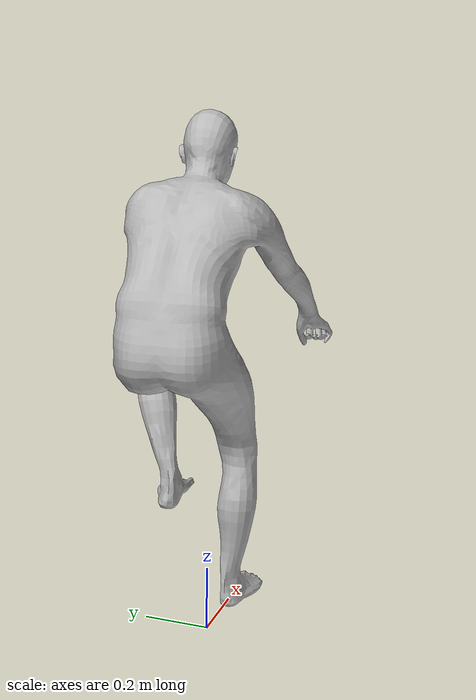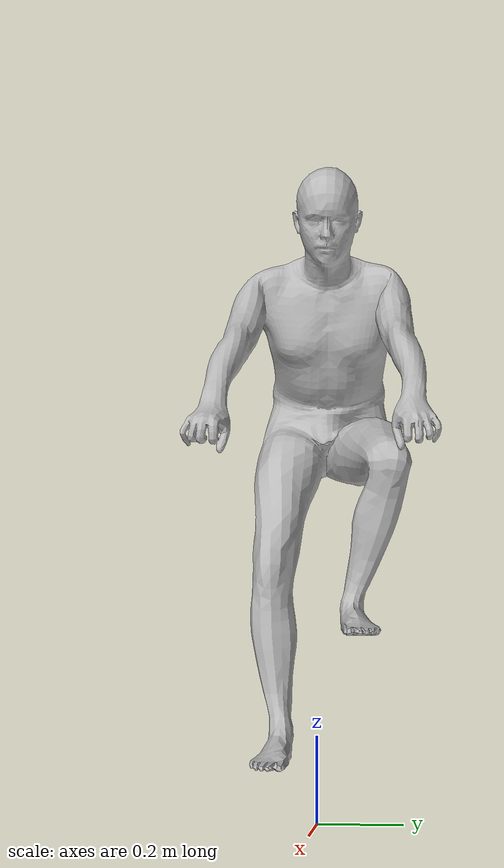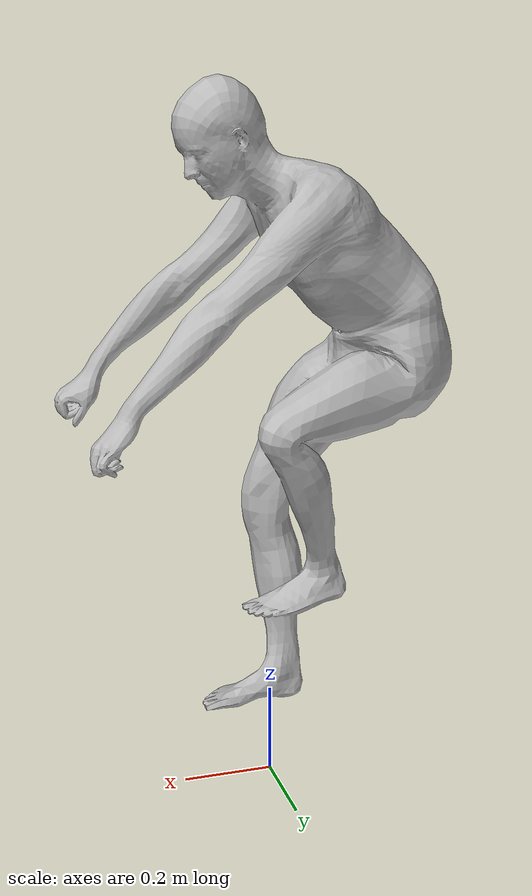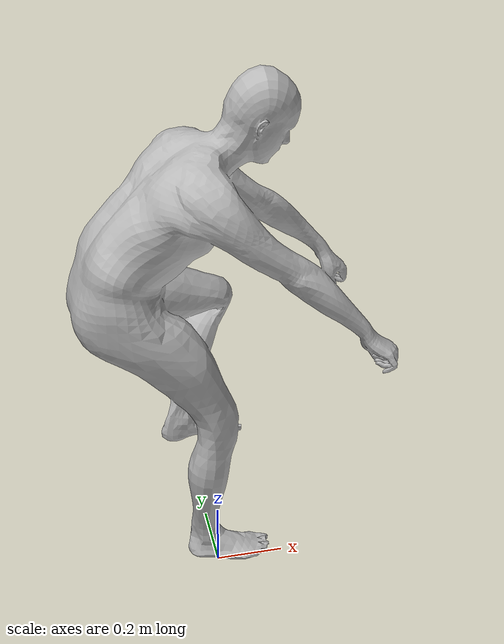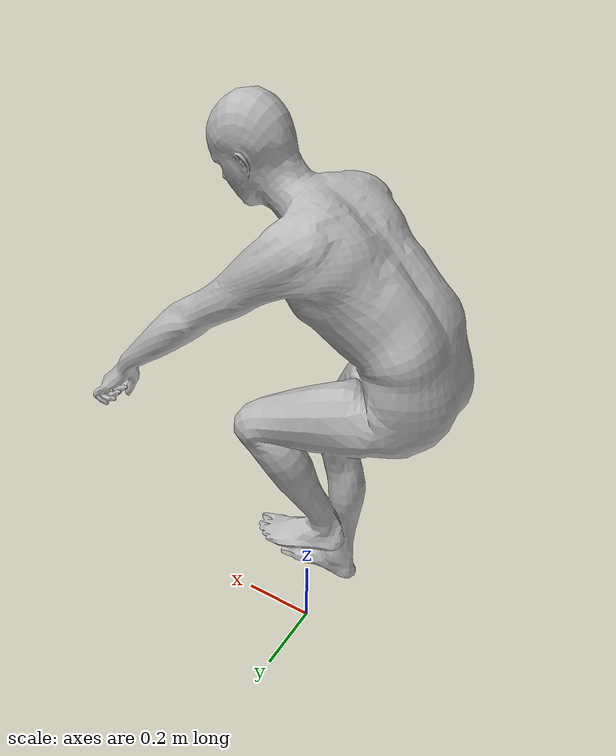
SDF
<?xml version="1.0" ?>
<sdf version="1.5">
  <model name="person_walking">
    <link name="link">
      <inertial>
        <pose>-0.102316 0.009944 1.031351 0 0 0</pose>
        <mass>50.26</mass>
        <inertia>
          <ixx>0.004666</ixx>
          <ixy>-0.000034</ixy>
          <ixz>-0.000231</ixz>
          <iyy>0.005206</iyy>
          <iyz>-0.000265</iyz>
          <izz>0.001909</izz>
        </inertia>
      </inertial>

      <collision name="person">
        <pose>0 0 0 0 0 0</pose>
        <geometry>
          <mesh>
            <uri>model://person_walking/meshes/human3.stl</uri>
          </mesh>
        </geometry>
      </collision>

      <visual name="visual">
        <pose>0 0 0 0 0 0</pose>
        <geometry>
          <mesh>
            <uri>model://person_walking/meshes/human3.stl</uri>
          </mesh>
        </geometry>
      </visual>

	     <sensor name='person_contact' type='contact'>
	       <contact>
		    <collision>person</collision>
	        </contact>
	       <update_rate> 5 </update_rate>
	    </sensor>
    </link>

  </model>
</sdf>
